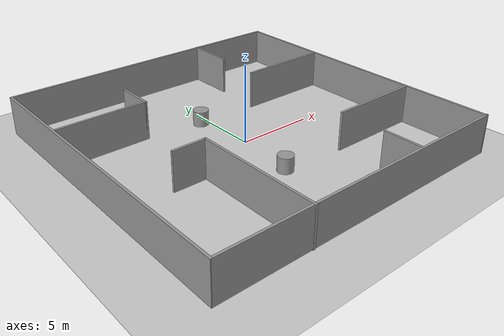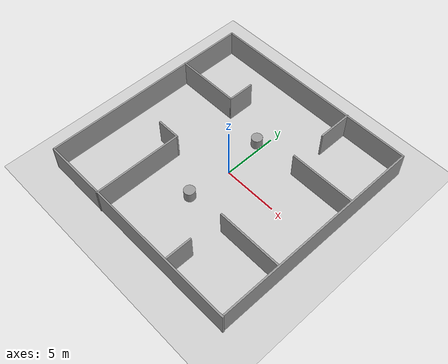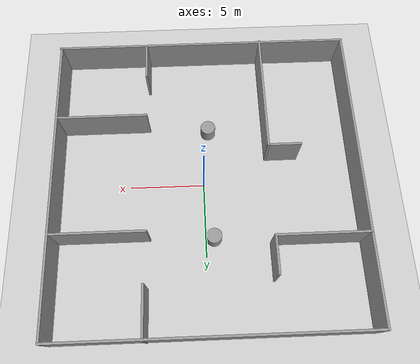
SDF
<sdf version="1.6">
 <world name="default">
  <light name="sun" type="directional">
   <pose>0 0 10 0 -0 0</pose>
   <diffuse>0.8 0.8 0.8 1</diffuse>
   <specular>0.2 0.2 0.2 1</specular>
   <attenuation>
    <range>1000</range>
    <constant>0.9</constant>
    <linear>0.01</linear>
    <quadratic>0.001</quadratic>
   </attenuation>
   <direction>-0.5 0.1 -0.9</direction>
  </light>
  <model name="ground_plane">
   <static>1</static>
   <link name="link">
    <collision name="collision">
     <geometry><plane><normal>0 0 1</normal><size>100 100</size></plane></geometry>
     <surface>
      <contact><collide_bitmask>65535</collide_bitmask></contact>
      <friction><ode><mu>100</mu><mu2>50</mu2></ode></friction>
     </surface>
    </collision>
    <visual name="visual">
     <cast_shadows>0</cast_shadows>
     <geometry><plane><normal>0 0 1</normal><size>100 100</size></plane></geometry>
     <material>
      <script><uri>file://media/materials/scripts/gazebo.material</uri><name>Gazebo/Grey</name></script>
     </material>
    </visual>
   </link>
  </model>
  <gravity>0 0 -9.8</gravity>
  <magnetic_field>6e-06 2.3e-05 -4.2e-05</magnetic_field>
  <atmosphere type="adiabatic"/>
  <physics name="default_physics" default="0" type="ode">
   <max_step_size>0.001</max_step_size>
   <real_time_factor>1</real_time_factor>
   <real_time_update_rate>1000</real_time_update_rate>
  </physics>
  <scene><ambient>0.4 0.4 0.4 1</ambient><background>0.7 0.7 0.7 1</background><shadows>1</shadows></scene>
  <spherical_coordinates>
   <surface_model>EARTH_WGS84</surface_model>
   <latitude_deg>0</latitude_deg>
   <longitude_deg>0</longitude_deg>
   <elevation>0</elevation>
   <heading_deg>0</heading_deg>
  </spherical_coordinates>
  <model name="Office_room">
   <pose>-0.187217 0.078696 0 0 -0 0</pose>
   <link name="Wall_11">
    <collision name="Wall_11_Collision">
     <geometry><box><size>2.5 0.15 2.5</size></box></geometry>
     <pose>0 0 1.25 0 -0 0</pose>
    </collision>
    <visual name="Wall_11_Visual">
     <pose>0 0 1.25 0 -0 0</pose>
     <geometry><box><size>2.5 0.15 2.5</size></box></geometry>
     <material>
      <script><uri>file://media/materials/scripts/gazebo.material</uri><name>Gazebo/Grey</name></script>
      <ambient>1 1 1 1</ambient>
     </material>
     <meta><layer>0</layer></meta>
    </visual>
    <pose>-4.05498 5.35988 0 0 -0 1.5708</pose>
   </link>
   <link name="Wall_14">
    <collision name="Wall_14_Collision">
     <geometry><box><size>8.25 0.15 2.5</size></box></geometry>
     <pose>0 0 1.25 0 -0 0</pose>
    </collision>
    <visual name="Wall_14_Visual">
     <pose>0 0 1.25 0 -0 0</pose>
     <geometry><box><size>8.25 0.15 2.5</size></box></geometry>
     <material>
      <script><uri>file://media/materials/scripts/gazebo.material</uri><name>Gazebo/Grey</name></script>
      <ambient>1 1 1 1</ambient>
     </material>
     <meta><layer>0</layer></meta>
    </visual>
    <pose>-4.11895 -5.91958 0 0 -0 1.5708</pose>
   </link>
   <link name="Wall_15">
    <collision name="Wall_15_Collision">
     <geometry><box><size>2.25 0.15 2.5</size></box></geometry>
     <pose>0 0 1.25 0 -0 0</pose>
    </collision>
    <visual name="Wall_15_Visual">
     <pose>0 0 1.25 0 -0 0</pose>
     <geometry><box><size>2.25 0.15 2.5</size></box></geometry>
     <material>
      <script><uri>file://media/materials/scripts/gazebo.material</uri><name>Gazebo/Grey</name></script>
      <ambient>1 1 1 1</ambient>
     </material>
     <meta><layer>0</layer></meta>
    </visual>
    <pose>-5.16895 -1.86958 0 0 -0 3.14159</pose>
   </link>
   <link name="Wall_2">
    <collision name="Wall_2_Collision">
     <geometry><box><size>20 0.15 2.5</size></box></geometry>
     <pose>0 0 1.25 0 -0 0</pose>
    </collision>
    <visual name="Wall_2_Visual">
     <pose>0 0 1.25 0 -0 0</pose>
     <geometry><box><size>20 0.15 2.5</size></box></geometry>
     <material>
      <script><uri>file://media/materials/scripts/gazebo.material</uri><name>Gazebo/Grey</name></script>
      <ambient>1 1 1 1</ambient>
     </material>
     <meta><layer>0</layer></meta>
    </visual>
    <pose>-9.94826 0.001662 0 0 -0 1.5708</pose>
   </link>
   <link name="Wall_20">
    <collision name="Wall_20_Collision">
     <geometry><box><size>6 0.15 2.5</size></box></geometry>
     <pose>0 0 1.25 0 -0 0</pose>
    </collision>
    <visual name="Wall_20_Visual">
     <pose>0 0 1.25 0 -0 0</pose>
     <geometry><box><size>6 0.15 2.5</size></box></geometry>
     <material>
      <script><uri>file://media/materials/scripts/gazebo.material</uri><name>Gazebo/Grey</name></script>
      <ambient>1 1 1 1</ambient>
     </material>
     <meta><layer>0</layer></meta>
    </visual>
    <pose>6.81446 3.62738 0 0 -0 0</pose>
   </link>
   <link name="Wall_23">
    <collision name="Wall_23_Collision">
     <geometry><box><size>6 0.15 2.5</size></box></geometry>
     <pose>0 0 1.25 0 -0 0</pose>
    </collision>
    <visual name="Wall_23_Visual">
     <pose>0 0 1.25 0 -0 0</pose>
     <geometry><box><size>6 0.15 2.5</size></box></geometry>
     <material>
      <script><uri>file://media/materials/scripts/gazebo.material</uri><name>Gazebo/Grey</name></script>
      <ambient>1 1 1 1</ambient>
     </material>
     <meta><layer>0</layer></meta>
    </visual>
    <pose>6.83638 -4.36565 0 0 -0 0</pose>
   </link>
   <link name="Wall_27">
    <collision name="Wall_27_Collision">
     <geometry><box><size>2.5 0.15 2.5</size></box></geometry>
     <pose>0 0 1.25 0 -0 0</pose>
    </collision>
    <visual name="Wall_27_Visual">
     <pose>0 0 1.25 0 -0 0</pose>
     <geometry><box><size>2.5 0.15 2.5</size></box></geometry>
     <material>
      <script><uri>file://media/materials/scripts/gazebo.material</uri><name>Gazebo/Grey</name></script>
      <ambient>1 1 1 1</ambient>
     </material>
     <meta><layer>0</layer></meta>
    </visual>
    <pose>3.89281 -8.66198 0 0 -0 1.5708</pose>
   </link>
   <link name="Wall_29">
    <collision name="Wall_29_Collision">
     <geometry><box><size>3.25 0.15 2.5</size></box></geometry>
     <pose>0 0 1.25 0 -0 0</pose>
    </collision>
    <visual name="Wall_29_Visual">
     <pose>0 0 1.25 0 -0 0</pose>
     <geometry><box><size>3.25 0.15 2.5</size></box></geometry>
     <material>
      <script><uri>file://media/materials/scripts/gazebo.material</uri><name>Gazebo/Grey</name></script>
      <ambient>1 1 1 1</ambient>
     </material>
     <meta><layer>0</layer></meta>
    </visual>
    <pose>4.04336 8.41958 0 0 -0 -1.5708</pose>
   </link>
   <link name="Wall_4">
    <collision name="Wall_4_Collision">
     <geometry><box><size>20 0.15 2.5</size></box></geometry>
     <pose>0 0 1.25 0 -0 0</pose>
    </collision>
    <visual name="Wall_4_Visual">
     <pose>0 0 1.25 0 -0 0</pose>
     <geometry><box><size>20 0.15 2.5</size></box></geometry>
     <material>
      <script><uri>file://media/materials/scripts/gazebo.material</uri><name>Gazebo/Grey</name></script>
      <ambient>1 1 1 1</ambient>
     </material>
     <meta><layer>0</layer></meta>
    </visual>
    <pose>0.023262 -9.92334 0 0 -0 0</pose>
   </link>
   <link name="Wall_6">
    <collision name="Wall_6_Collision">
     <geometry><box><size>20 0.15 2.5</size></box></geometry>
     <pose>0 0 1.25 0 -0 0</pose>
    </collision>
    <visual name="Wall_6_Visual">
     <pose>0 0 1.25 0 -0 0</pose>
     <geometry><box><size>20 0.15 2.5</size></box></geometry>
     <material>
      <script><uri>file://media/materials/scripts/gazebo.material</uri><name>Gazebo/Grey</name></script>
      <ambient>1 1 1 1</ambient>
     </material>
     <meta><layer>0</layer></meta>
    </visual>
    <pose>-0.023261 9.92666 0 0 -0 0</pose>
   </link>
   <link name="Wall_7">
    <collision name="Wall_7_Collision">
     <geometry><box><size>20 0.15 2.5</size></box></geometry>
     <pose>0 0 1.25 0 -0 0</pose>
    </collision>
    <visual name="Wall_7_Visual">
     <pose>0 0 1.25 0 -0 0</pose>
     <geometry><box><size>20 0.15 2.5</size></box></geometry>
     <material>
      <script><uri>file://media/materials/scripts/gazebo.material</uri><name>Gazebo/Grey</name></script>
      <ambient>1 1 1 1</ambient>
     </material>
     <meta><layer>0</layer></meta>
    </visual>
    <pose>9.90174 0.001662 0 0 -0 -1.5708</pose>
   </link>
   <link name="Wall_9">
    <collision name="Wall_9_Collision">
     <geometry><box><size>6 0.15 2.5</size></box></geometry>
     <pose>0 0 1.25 0 -0 0</pose>
    </collision>
    <visual name="Wall_9_Visual">
     <pose>0 0 1.25 0 -0 0</pose>
     <geometry><box><size>6 0.15 2.5</size></box></geometry>
     <material>
      <script><uri>file://media/materials/scripts/gazebo.material</uri><name>Gazebo/Grey</name></script>
      <ambient>1 1 1 1</ambient>
     </material>
     <meta><layer>0</layer></meta>
    </visual>
    <pose>-6.97998 4.18488 0 0 -0 0</pose>
   </link>
   <static>1</static>
  </model>
  <model name="unit_cylinder">
   <pose>-0.412454 -3.94622 0.499993 -3e-06 -4e-06 -0</pose>
   <link name="link">
    <inertial>
     <mass>1</mass>
     <inertia><ixx>0.145833</ixx><ixy>0</ixy><ixz>0</ixz><iyy>0.145833</iyy><iyz>0</iyz><izz>0.125</izz></inertia>
    </inertial>
    <collision name="collision">
     <geometry><cylinder><radius>0.5</radius><length>1</length></cylinder></geometry>
    </collision>
    <visual name="visual">
     <geometry><cylinder><radius>0.5</radius><length>1</length></cylinder></geometry>
     <material>
      <script><name>Gazebo/Grey</name><uri>file://media/materials/scripts/gazebo.material</uri></script>
     </material>
    </visual>
   </link>
  </model>
  <model name="unit_cylinder_0">
   <pose>-0.523342 3.78016 0.499997 3e-06 4e-06 -0</pose>
   <link name="link">
    <inertial>
     <mass>1</mass>
     <inertia><ixx>0.145833</ixx><ixy>0</ixy><ixz>0</ixz><iyy>0.145833</iyy><iyz>0</iyz><izz>0.125</izz></inertia>
    </inertial>
    <collision name="collision">
     <geometry><cylinder><radius>0.5</radius><length>1</length></cylinder></geometry>
    </collision>
    <visual name="visual">
     <geometry><cylinder><radius>0.5</radius><length>1</length></cylinder></geometry>
     <material>
      <script><name>Gazebo/Grey</name><uri>file://media/materials/scripts/gazebo.material</uri></script>
     </material>
    </visual>
   </link>
  </model>
 </world>
</sdf>
